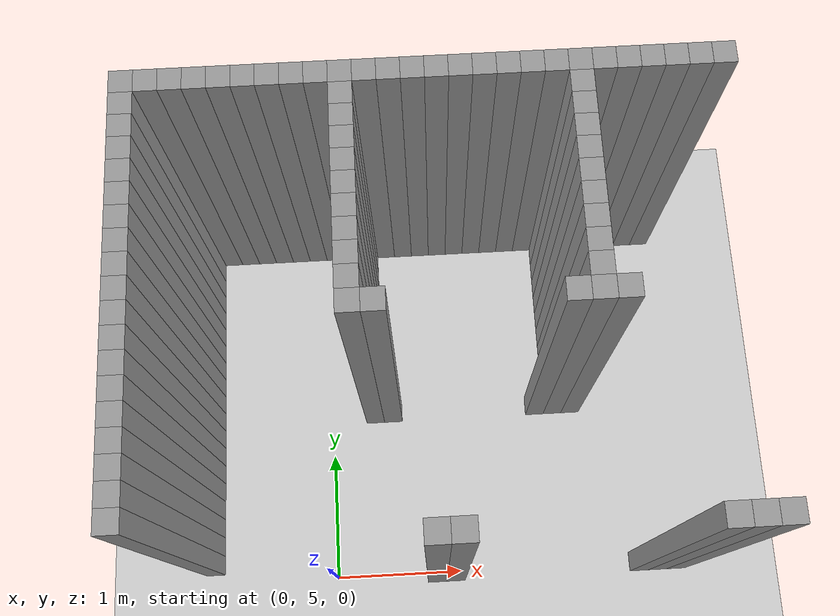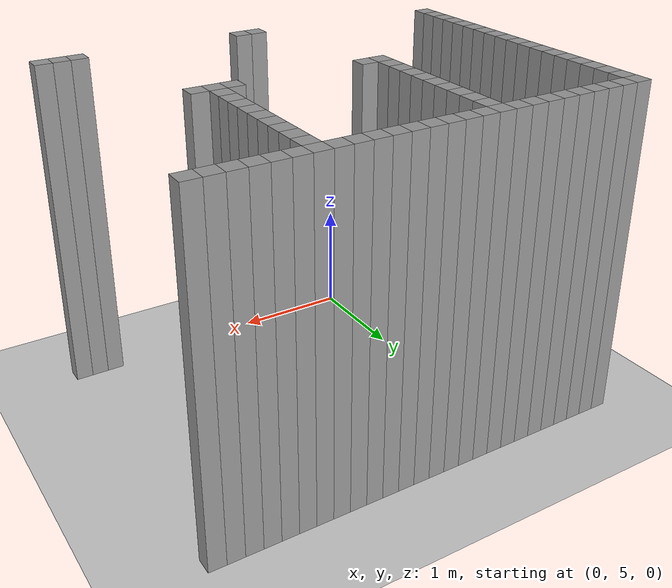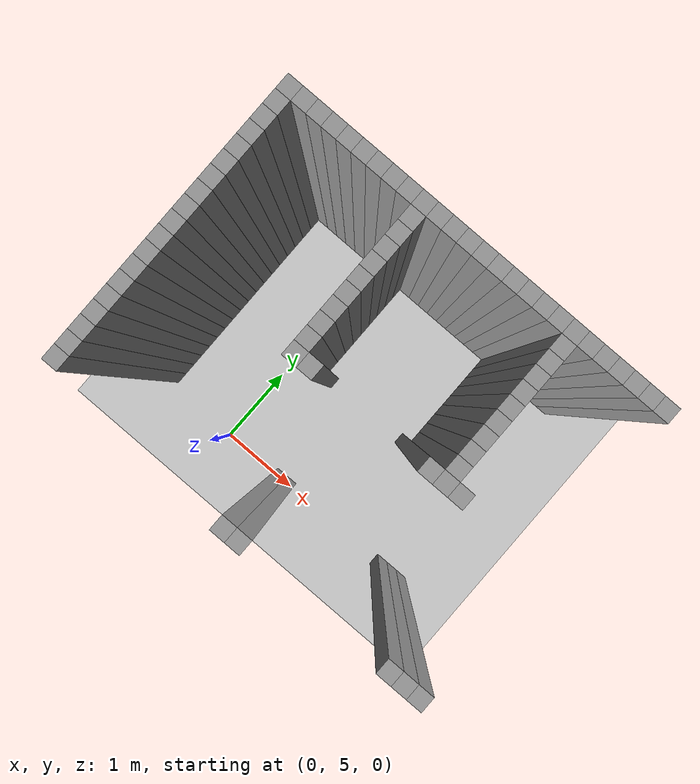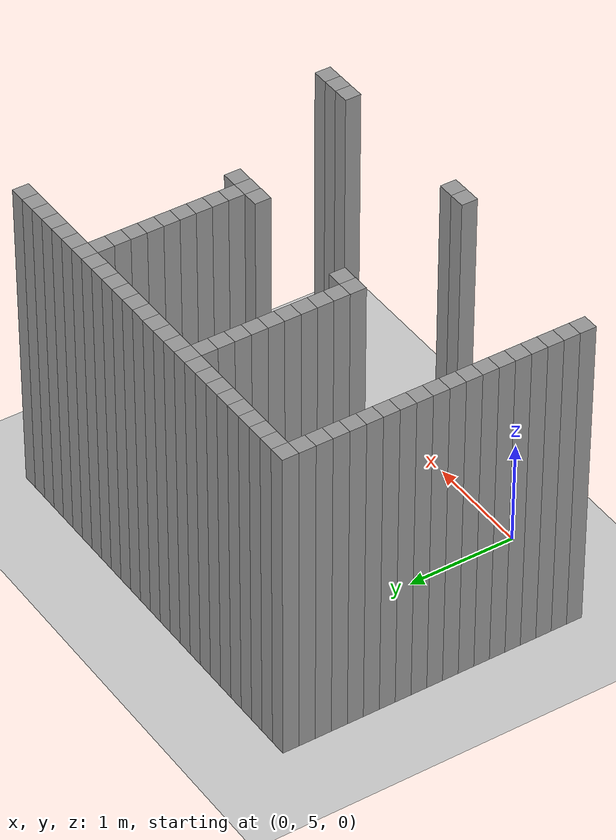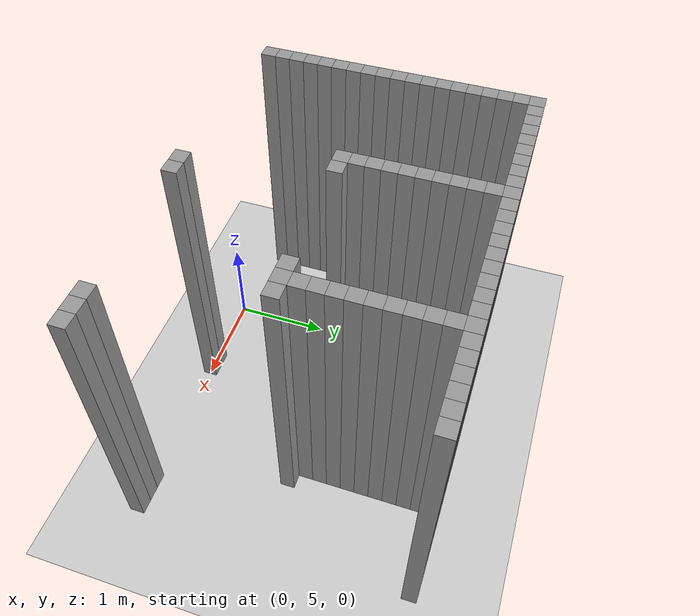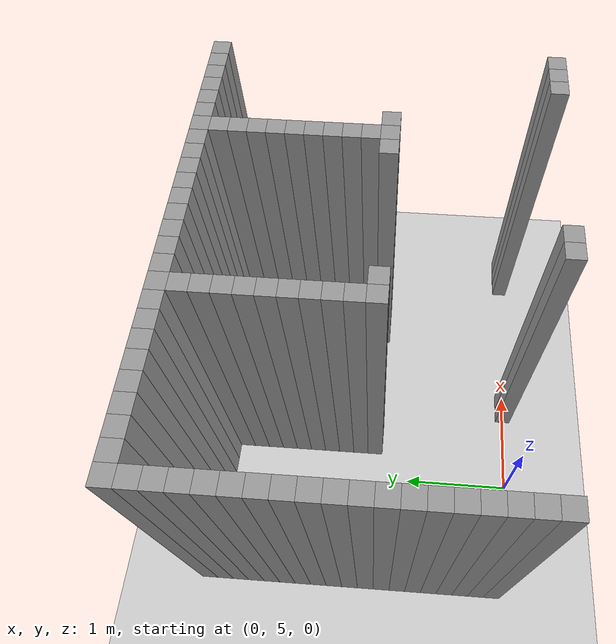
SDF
<sdf version="1.7">
 <world name="default">
  <model name="ground_plane">
   <static>1</static>
   <link name="link">
    <collision name="collision">
     <geometry><plane><normal>0 0 1</normal><size>100 100</size></plane></geometry>
     <surface>
      <contact><collide_bitmask>65535</collide_bitmask></contact>
      <friction><ode><mu>100</mu><mu2>50</mu2></ode></friction>
     </surface>
    </collision>
    <visual name="visual">
     <cast_shadows>0</cast_shadows>
     <geometry><plane><normal>0 0 1</normal><size>100 100</size></plane></geometry>
     <material>
      <script><uri>file://media/materials/scripts/gazebo.material</uri><name>Gazebo/Grey</name></script>
     </material>
    </visual>
   </link>
  </model>
  <model name="image45001">
   <pose>-1 -1 0 0 -0 0</pose>
   <link name="Wall_41">
    <collision name="Wall_41_Collision">
     <geometry><box><size>0.15 0.15 3</size></box></geometry>
     <pose>0 0 1.5 0 -0 0</pose>
    </collision>
    <visual name="Wall_41_Visual">
     <pose>0 0 1.5 0 -0 0</pose>
     <geometry><box><size>0.15 0.15 3</size></box></geometry>
     <material>
      <script><uri>file://media/materials/scripts/gazebo.material</uri><name>Gazebo/Grey</name></script>
      <ambient>1 1 1 1</ambient>
     </material>
     <meta><layer>0</layer></meta>
    </visual>
    <pose>0.0 6.1499999999999995 0 0 -0 0</pose>
   </link>
   <link name="Wall_42">
    <collision name="Wall_42_Collision">
     <geometry><box><size>0.15 0.15 3</size></box></geometry>
     <pose>0 0 1.5 0 -0 0</pose>
    </collision>
    <visual name="Wall_42_Visual">
     <pose>0 0 1.5 0 -0 0</pose>
     <geometry><box><size>0.15 0.15 3</size></box></geometry>
     <material>
      <script><uri>file://media/materials/scripts/gazebo.material</uri><name>Gazebo/Grey</name></script>
      <ambient>1 1 1 1</ambient>
     </material>
     <meta><layer>0</layer></meta>
    </visual>
    <pose>0.0 6.3 0 0 -0 0</pose>
   </link>
   <link name="Wall_43">
    <collision name="Wall_43_Collision">
     <geometry><box><size>0.15 0.15 3</size></box></geometry>
     <pose>0 0 1.5 0 -0 0</pose>
    </collision>
    <visual name="Wall_43_Visual">
     <pose>0 0 1.5 0 -0 0</pose>
     <geometry><box><size>0.15 0.15 3</size></box></geometry>
     <material>
      <script><uri>file://media/materials/scripts/gazebo.material</uri><name>Gazebo/Grey</name></script>
      <ambient>1 1 1 1</ambient>
     </material>
     <meta><layer>0</layer></meta>
    </visual>
    <pose>0.0 6.45 0 0 -0 0</pose>
   </link>
   <link name="Wall_44">
    <collision name="Wall_44_Collision">
     <geometry><box><size>0.15 0.15 3</size></box></geometry>
     <pose>0 0 1.5 0 -0 0</pose>
    </collision>
    <visual name="Wall_44_Visual">
     <pose>0 0 1.5 0 -0 0</pose>
     <geometry><box><size>0.15 0.15 3</size></box></geometry>
     <material>
      <script><uri>file://media/materials/scripts/gazebo.material</uri><name>Gazebo/Grey</name></script>
      <ambient>1 1 1 1</ambient>
     </material>
     <meta><layer>0</layer></meta>
    </visual>
    <pose>0.0 6.6 0 0 -0 0</pose>
   </link>
   <link name="Wall_45">
    <collision name="Wall_45_Collision">
     <geometry><box><size>0.15 0.15 3</size></box></geometry>
     <pose>0 0 1.5 0 -0 0</pose>
    </collision>
    <visual name="Wall_45_Visual">
     <pose>0 0 1.5 0 -0 0</pose>
     <geometry><box><size>0.15 0.15 3</size></box></geometry>
     <material>
      <script><uri>file://media/materials/scripts/gazebo.material</uri><name>Gazebo/Grey</name></script>
      <ambient>1 1 1 1</ambient>
     </material>
     <meta><layer>0</layer></meta>
    </visual>
    <pose>0.0 6.75 0 0 -0 0</pose>
   </link>
   <link name="Wall_46">
    <collision name="Wall_46_Collision">
     <geometry><box><size>0.15 0.15 3</size></box></geometry>
     <pose>0 0 1.5 0 -0 0</pose>
    </collision>
    <visual name="Wall_46_Visual">
     <pose>0 0 1.5 0 -0 0</pose>
     <geometry><box><size>0.15 0.15 3</size></box></geometry>
     <material>
      <script><uri>file://media/materials/scripts/gazebo.material</uri><name>Gazebo/Grey</name></script>
      <ambient>1 1 1 1</ambient>
     </material>
     <meta><layer>0</layer></meta>
    </visual>
    <pose>0.0 6.8999999999999995 0 0 -0 0</pose>
   </link>
   <link name="Wall_47">
    <collision name="Wall_47_Collision">
     <geometry><box><size>0.15 0.15 3</size></box></geometry>
     <pose>0 0 1.5 0 -0 0</pose>
    </collision>
    <visual name="Wall_47_Visual">
     <pose>0 0 1.5 0 -0 0</pose>
     <geometry><box><size>0.15 0.15 3</size></box></geometry>
     <material>
      <script><uri>file://media/materials/scripts/gazebo.material</uri><name>Gazebo/Grey</name></script>
      <ambient>1 1 1 1</ambient>
     </material>
     <meta><layer>0</layer></meta>
    </visual>
    <pose>0.0 7.05 0 0 -0 0</pose>
   </link>
   <link name="Wall_48">
    <collision name="Wall_48_Collision">
     <geometry><box><size>0.15 0.15 3</size></box></geometry>
     <pose>0 0 1.5 0 -0 0</pose>
    </collision>
    <visual name="Wall_48_Visual">
     <pose>0 0 1.5 0 -0 0</pose>
     <geometry><box><size>0.15 0.15 3</size></box></geometry>
     <material>
      <script><uri>file://media/materials/scripts/gazebo.material</uri><name>Gazebo/Grey</name></script>
      <ambient>1 1 1 1</ambient>
     </material>
     <meta><layer>0</layer></meta>
    </visual>
    <pose>0.0 7.199999999999999 0 0 -0 0</pose>
   </link>
   <link name="Wall_49">
    <collision name="Wall_49_Collision">
     <geometry><box><size>0.15 0.15 3</size></box></geometry>
     <pose>0 0 1.5 0 -0 0</pose>
    </collision>
    <visual name="Wall_49_Visual">
     <pose>0 0 1.5 0 -0 0</pose>
     <geometry><box><size>0.15 0.15 3</size></box></geometry>
     <material>
      <script><uri>file://media/materials/scripts/gazebo.material</uri><name>Gazebo/Grey</name></script>
      <ambient>1 1 1 1</ambient>
     </material>
     <meta><layer>0</layer></meta>
    </visual>
    <pose>0.0 7.35 0 0 -0 0</pose>
   </link>
   <link name="Wall_50">
    <collision name="Wall_50_Collision">
     <geometry><box><size>0.15 0.15 3</size></box></geometry>
     <pose>0 0 1.5 0 -0 0</pose>
    </collision>
    <visual name="Wall_50_Visual">
     <pose>0 0 1.5 0 -0 0</pose>
     <geometry><box><size>0.15 0.15 3</size></box></geometry>
     <material>
      <script><uri>file://media/materials/scripts/gazebo.material</uri><name>Gazebo/Grey</name></script>
      <ambient>1 1 1 1</ambient>
     </material>
     <meta><layer>0</layer></meta>
    </visual>
    <pose>0.0 7.5 0 0 -0 0</pose>
   </link>
   <link name="Wall_51">
    <collision name="Wall_51_Collision">
     <geometry><box><size>0.15 0.15 3</size></box></geometry>
     <pose>0 0 1.5 0 -0 0</pose>
    </collision>
    <visual name="Wall_51_Visual">
     <pose>0 0 1.5 0 -0 0</pose>
     <geometry><box><size>0.15 0.15 3</size></box></geometry>
     <material>
      <script><uri>file://media/materials/scripts/gazebo.material</uri><name>Gazebo/Grey</name></script>
      <ambient>1 1 1 1</ambient>
     </material>
     <meta><layer>0</layer></meta>
    </visual>
    <pose>0.0 7.6499999999999995 0 0 -0 0</pose>
   </link>
   <link name="Wall_52">
    <collision name="Wall_52_Collision">
     <geometry><box><size>0.15 0.15 3</size></box></geometry>
     <pose>0 0 1.5 0 -0 0</pose>
    </collision>
    <visual name="Wall_52_Visual">
     <pose>0 0 1.5 0 -0 0</pose>
     <geometry><box><size>0.15 0.15 3</size></box></geometry>
     <material>
      <script><uri>file://media/materials/scripts/gazebo.material</uri><name>Gazebo/Grey</name></script>
      <ambient>1 1 1 1</ambient>
     </material>
     <meta><layer>0</layer></meta>
    </visual>
    <pose>0.0 7.8 0 0 -0 0</pose>
   </link>
   <link name="Wall_53">
    <collision name="Wall_53_Collision">
     <geometry><box><size>0.15 0.15 3</size></box></geometry>
     <pose>0 0 1.5 0 -0 0</pose>
    </collision>
    <visual name="Wall_53_Visual">
     <pose>0 0 1.5 0 -0 0</pose>
     <geometry><box><size>0.15 0.15 3</size></box></geometry>
     <material>
      <script><uri>file://media/materials/scripts/gazebo.material</uri><name>Gazebo/Grey</name></script>
      <ambient>1 1 1 1</ambient>
     </material>
     <meta><layer>0</layer></meta>
    </visual>
    <pose>0.0 7.949999999999999 0 0 -0 0</pose>
   </link>
   <link name="Wall_54">
    <collision name="Wall_54_Collision">
     <geometry><box><size>0.15 0.15 3</size></box></geometry>
     <pose>0 0 1.5 0 -0 0</pose>
    </collision>
    <visual name="Wall_54_Visual">
     <pose>0 0 1.5 0 -0 0</pose>
     <geometry><box><size>0.15 0.15 3</size></box></geometry>
     <material>
      <script><uri>file://media/materials/scripts/gazebo.material</uri><name>Gazebo/Grey</name></script>
      <ambient>1 1 1 1</ambient>
     </material>
     <meta><layer>0</layer></meta>
    </visual>
    <pose>0.0 8.1 0 0 -0 0</pose>
   </link>
   <link name="Wall_55">
    <collision name="Wall_55_Collision">
     <geometry><box><size>0.15 0.15 3</size></box></geometry>
     <pose>0 0 1.5 0 -0 0</pose>
    </collision>
    <visual name="Wall_55_Visual">
     <pose>0 0 1.5 0 -0 0</pose>
     <geometry><box><size>0.15 0.15 3</size></box></geometry>
     <material>
      <script><uri>file://media/materials/scripts/gazebo.material</uri><name>Gazebo/Grey</name></script>
      <ambient>1 1 1 1</ambient>
     </material>
     <meta><layer>0</layer></meta>
    </visual>
    <pose>0.0 8.25 0 0 -0 0</pose>
   </link>
   <link name="Wall_56">
    <collision name="Wall_56_Collision">
     <geometry><box><size>0.15 0.15 3</size></box></geometry>
     <pose>0 0 1.5 0 -0 0</pose>
    </collision>
    <visual name="Wall_56_Visual">
     <pose>0 0 1.5 0 -0 0</pose>
     <geometry><box><size>0.15 0.15 3</size></box></geometry>
     <material>
      <script><uri>file://media/materials/scripts/gazebo.material</uri><name>Gazebo/Grey</name></script>
      <ambient>1 1 1 1</ambient>
     </material>
     <meta><layer>0</layer></meta>
    </visual>
    <pose>0.0 8.4 0 0 -0 0</pose>
   </link>
   <link name="Wall_57">
    <collision name="Wall_57_Collision">
     <geometry><box><size>0.15 0.15 3</size></box></geometry>
     <pose>0 0 1.5 0 -0 0</pose>
    </collision>
    <visual name="Wall_57_Visual">
     <pose>0 0 1.5 0 -0 0</pose>
     <geometry><box><size>0.15 0.15 3</size></box></geometry>
     <material>
      <script><uri>file://media/materials/scripts/gazebo.material</uri><name>Gazebo/Grey</name></script>
      <ambient>1 1 1 1</ambient>
     </material>
     <meta><layer>0</layer></meta>
    </visual>
    <pose>0.0 8.549999999999999 0 0 -0 0</pose>
   </link>
   <link name="Wall_58">
    <collision name="Wall_58_Collision">
     <geometry><box><size>0.15 0.15 3</size></box></geometry>
     <pose>0 0 1.5 0 -0 0</pose>
    </collision>
    <visual name="Wall_58_Visual">
     <pose>0 0 1.5 0 -0 0</pose>
     <geometry><box><size>0.15 0.15 3</size></box></geometry>
     <material>
      <script><uri>file://media/materials/scripts/gazebo.material</uri><name>Gazebo/Grey</name></script>
      <ambient>1 1 1 1</ambient>
     </material>
     <meta><layer>0</layer></meta>
    </visual>
    <pose>0.0 8.7 0 0 -0 0</pose>
   </link>
   <link name="Wall_59">
    <collision name="Wall_59_Collision">
     <geometry><box><size>0.15 0.15 3</size></box></geometry>
     <pose>0 0 1.5 0 -0 0</pose>
    </collision>
    <visual name="Wall_59_Visual">
     <pose>0 0 1.5 0 -0 0</pose>
     <geometry><box><size>0.15 0.15 3</size></box></geometry>
     <material>
      <script><uri>file://media/materials/scripts/gazebo.material</uri><name>Gazebo/Grey</name></script>
      <ambient>1 1 1 1</ambient>
     </material>
     <meta><layer>0</layer></meta>
    </visual>
    <pose>0.0 8.85 0 0 -0 0</pose>
   </link>
   <link name="Wall_64">
    <collision name="Wall_64_Collision">
     <geometry><box><size>0.15 0.15 3</size></box></geometry>
     <pose>0 0 1.5 0 -0 0</pose>
    </collision>
    <visual name="Wall_64_Visual">
     <pose>0 0 1.5 0 -0 0</pose>
     <geometry><box><size>0.15 0.15 3</size></box></geometry>
     <material>
      <script><uri>file://media/materials/scripts/gazebo.material</uri><name>Gazebo/Grey</name></script>
      <ambient>1 1 1 1</ambient>
     </material>
     <meta><layer>0</layer></meta>
    </visual>
    <pose>0.15 8.85 0 0 -0 0</pose>
   </link>
   <link name="Wall_69">
    <collision name="Wall_69_Collision">
     <geometry><box><size>0.15 0.15 3</size></box></geometry>
     <pose>0 0 1.5 0 -0 0</pose>
    </collision>
    <visual name="Wall_69_Visual">
     <pose>0 0 1.5 0 -0 0</pose>
     <geometry><box><size>0.15 0.15 3</size></box></geometry>
     <material>
      <script><uri>file://media/materials/scripts/gazebo.material</uri><name>Gazebo/Grey</name></script>
      <ambient>1 1 1 1</ambient>
     </material>
     <meta><layer>0</layer></meta>
    </visual>
    <pose>0.3 8.85 0 0 -0 0</pose>
   </link>
   <link name="Wall_74">
    <collision name="Wall_74_Collision">
     <geometry><box><size>0.15 0.15 3</size></box></geometry>
     <pose>0 0 1.5 0 -0 0</pose>
    </collision>
    <visual name="Wall_74_Visual">
     <pose>0 0 1.5 0 -0 0</pose>
     <geometry><box><size>0.15 0.15 3</size></box></geometry>
     <material>
      <script><uri>file://media/materials/scripts/gazebo.material</uri><name>Gazebo/Grey</name></script>
      <ambient>1 1 1 1</ambient>
     </material>
     <meta><layer>0</layer></meta>
    </visual>
    <pose>0.44999999999999996 8.85 0 0 -0 0</pose>
   </link>
   <link name="Wall_78">
    <collision name="Wall_78_Collision">
     <geometry><box><size>0.15 0.15 3</size></box></geometry>
     <pose>0 0 1.5 0 -0 0</pose>
    </collision>
    <visual name="Wall_78_Visual">
     <pose>0 0 1.5 0 -0 0</pose>
     <geometry><box><size>0.15 0.15 3</size></box></geometry>
     <material>
      <script><uri>file://media/materials/scripts/gazebo.material</uri><name>Gazebo/Grey</name></script>
      <ambient>1 1 1 1</ambient>
     </material>
     <meta><layer>0</layer></meta>
    </visual>
    <pose>0.6 8.85 0 0 -0 0</pose>
   </link>
   <link name="Wall_82">
    <collision name="Wall_82_Collision">
     <geometry><box><size>0.15 0.15 3</size></box></geometry>
     <pose>0 0 1.5 0 -0 0</pose>
    </collision>
    <visual name="Wall_82_Visual">
     <pose>0 0 1.5 0 -0 0</pose>
     <geometry><box><size>0.15 0.15 3</size></box></geometry>
     <material>
      <script><uri>file://media/materials/scripts/gazebo.material</uri><name>Gazebo/Grey</name></script>
      <ambient>1 1 1 1</ambient>
     </material>
     <meta><layer>0</layer></meta>
    </visual>
    <pose>0.75 8.85 0 0 -0 0</pose>
   </link>
   <link name="Wall_86">
    <collision name="Wall_86_Collision">
     <geometry><box><size>0.15 0.15 3</size></box></geometry>
     <pose>0 0 1.5 0 -0 0</pose>
    </collision>
    <visual name="Wall_86_Visual">
     <pose>0 0 1.5 0 -0 0</pose>
     <geometry><box><size>0.15 0.15 3</size></box></geometry>
     <material>
      <script><uri>file://media/materials/scripts/gazebo.material</uri><name>Gazebo/Grey</name></script>
      <ambient>1 1 1 1</ambient>
     </material>
     <meta><layer>0</layer></meta>
    </visual>
    <pose>0.8999999999999999 8.85 0 0 -0 0</pose>
   </link>
   <link name="Wall_90">
    <collision name="Wall_90_Collision">
     <geometry><box><size>0.15 0.15 3</size></box></geometry>
     <pose>0 0 1.5 0 -0 0</pose>
    </collision>
    <visual name="Wall_90_Visual">
     <pose>0 0 1.5 0 -0 0</pose>
     <geometry><box><size>0.15 0.15 3</size></box></geometry>
     <material>
      <script><uri>file://media/materials/scripts/gazebo.material</uri><name>Gazebo/Grey</name></script>
      <ambient>1 1 1 1</ambient>
     </material>
     <meta><layer>0</layer></meta>
    </visual>
    <pose>1.05 8.85 0 0 -0 0</pose>
   </link>
   <link name="Wall_94">
    <collision name="Wall_94_Collision">
     <geometry><box><size>0.15 0.15 3</size></box></geometry>
     <pose>0 0 1.5 0 -0 0</pose>
    </collision>
    <visual name="Wall_94_Visual">
     <pose>0 0 1.5 0 -0 0</pose>
     <geometry><box><size>0.15 0.15 3</size></box></geometry>
     <material>
      <script><uri>file://media/materials/scripts/gazebo.material</uri><name>Gazebo/Grey</name></script>
      <ambient>1 1 1 1</ambient>
     </material>
     <meta><layer>0</layer></meta>
    </visual>
    <pose>1.2 8.85 0 0 -0 0</pose>
   </link>
   <link name="Wall_98">
    <collision name="Wall_98_Collision">
     <geometry><box><size>0.15 0.15 3</size></box></geometry>
     <pose>0 0 1.5 0 -0 0</pose>
    </collision>
    <visual name="Wall_98_Visual">
     <pose>0 0 1.5 0 -0 0</pose>
     <geometry><box><size>0.15 0.15 3</size></box></geometry>
     <material>
      <script><uri>file://media/materials/scripts/gazebo.material</uri><name>Gazebo/Grey</name></script>
      <ambient>1 1 1 1</ambient>
     </material>
     <meta><layer>0</layer></meta>
    </visual>
    <pose>1.3499999999999999 7.35 0 0 -0 0</pose>
   </link>
   <link name="Wall_99">
    <collision name="Wall_99_Collision">
     <geometry><box><size>0.15 0.15 3</size></box></geometry>
     <pose>0 0 1.5 0 -0 0</pose>
    </collision>
    <visual name="Wall_99_Visual">
     <pose>0 0 1.5 0 -0 0</pose>
     <geometry><box><size>0.15 0.15 3</size></box></geometry>
     <material>
      <script><uri>file://media/materials/scripts/gazebo.material</uri><name>Gazebo/Grey</name></script>
      <ambient>1 1 1 1</ambient>
     </material>
     <meta><layer>0</layer></meta>
    </visual>
    <pose>1.3499999999999999 7.5 0 0 -0 0</pose>
   </link>
   <link name="Wall_100">
    <collision name="Wall_100_Collision">
     <geometry><box><size>0.15 0.15 3</size></box></geometry>
     <pose>0 0 1.5 0 -0 0</pose>
    </collision>
    <visual name="Wall_100_Visual">
     <pose>0 0 1.5 0 -0 0</pose>
     <geometry><box><size>0.15 0.15 3</size></box></geometry>
     <material>
      <script><uri>file://media/materials/scripts/gazebo.material</uri><name>Gazebo/Grey</name></script>
      <ambient>1 1 1 1</ambient>
     </material>
     <meta><layer>0</layer></meta>
    </visual>
    <pose>1.3499999999999999 7.6499999999999995 0 0 -0 0</pose>
   </link>
   <link name="Wall_101">
    <collision name="Wall_101_Collision">
     <geometry><box><size>0.15 0.15 3</size></box></geometry>
     <pose>0 0 1.5 0 -0 0</pose>
    </collision>
    <visual name="Wall_101_Visual">
     <pose>0 0 1.5 0 -0 0</pose>
     <geometry><box><size>0.15 0.15 3</size></box></geometry>
     <material>
      <script><uri>file://media/materials/scripts/gazebo.material</uri><name>Gazebo/Grey</name></script>
      <ambient>1 1 1 1</ambient>
     </material>
     <meta><layer>0</layer></meta>
    </visual>
    <pose>1.3499999999999999 7.8 0 0 -0 0</pose>
   </link>
   <link name="Wall_102">
    <collision name="Wall_102_Collision">
     <geometry><box><size>0.15 0.15 3</size></box></geometry>
     <pose>0 0 1.5 0 -0 0</pose>
    </collision>
    <visual name="Wall_102_Visual">
     <pose>0 0 1.5 0 -0 0</pose>
     <geometry><box><size>0.15 0.15 3</size></box></geometry>
     <material>
      <script><uri>file://media/materials/scripts/gazebo.material</uri><name>Gazebo/Grey</name></script>
      <ambient>1 1 1 1</ambient>
     </material>
     <meta><layer>0</layer></meta>
    </visual>
    <pose>1.3499999999999999 7.949999999999999 0 0 -0 0</pose>
   </link>
   <link name="Wall_103">
    <collision name="Wall_103_Collision">
     <geometry><box><size>0.15 0.15 3</size></box></geometry>
     <pose>0 0 1.5 0 -0 0</pose>
    </collision>
    <visual name="Wall_103_Visual">
     <pose>0 0 1.5 0 -0 0</pose>
     <geometry><box><size>0.15 0.15 3</size></box></geometry>
     <material>
      <script><uri>file://media/materials/scripts/gazebo.material</uri><name>Gazebo/Grey</name></script>
      <ambient>1 1 1 1</ambient>
     </material>
     <meta><layer>0</layer></meta>
    </visual>
    <pose>1.3499999999999999 8.1 0 0 -0 0</pose>
   </link>
   <link name="Wall_104">
    <collision name="Wall_104_Collision">
     <geometry><box><size>0.15 0.15 3</size></box></geometry>
     <pose>0 0 1.5 0 -0 0</pose>
    </collision>
    <visual name="Wall_104_Visual">
     <pose>0 0 1.5 0 -0 0</pose>
     <geometry><box><size>0.15 0.15 3</size></box></geometry>
     <material>
      <script><uri>file://media/materials/scripts/gazebo.material</uri><name>Gazebo/Grey</name></script>
      <ambient>1 1 1 1</ambient>
     </material>
     <meta><layer>0</layer></meta>
    </visual>
    <pose>1.3499999999999999 8.25 0 0 -0 0</pose>
   </link>
   <link name="Wall_105">
    <collision name="Wall_105_Collision">
     <geometry><box><size>0.15 0.15 3</size></box></geometry>
     <pose>0 0 1.5 0 -0 0</pose>
    </collision>
    <visual name="Wall_105_Visual">
     <pose>0 0 1.5 0 -0 0</pose>
     <geometry><box><size>0.15 0.15 3</size></box></geometry>
     <material>
      <script><uri>file://media/materials/scripts/gazebo.material</uri><name>Gazebo/Grey</name></script>
      <ambient>1 1 1 1</ambient>
     </material>
     <meta><layer>0</layer></meta>
    </visual>
    <pose>1.3499999999999999 8.4 0 0 -0 0</pose>
   </link>
   <link name="Wall_106">
    <collision name="Wall_106_Collision">
     <geometry><box><size>0.15 0.15 3</size></box></geometry>
     <pose>0 0 1.5 0 -0 0</pose>
    </collision>
    <visual name="Wall_106_Visual">
     <pose>0 0 1.5 0 -0 0</pose>
     <geometry><box><size>0.15 0.15 3</size></box></geometry>
     <material>
      <script><uri>file://media/materials/scripts/gazebo.material</uri><name>Gazebo/Grey</name></script>
      <ambient>1 1 1 1</ambient>
     </material>
     <meta><layer>0</layer></meta>
    </visual>
    <pose>1.3499999999999999 8.549999999999999 0 0 -0 0</pose>
   </link>
   <link name="Wall_107">
    <collision name="Wall_107_Collision">
     <geometry><box><size>0.15 0.15 3</size></box></geometry>
     <pose>0 0 1.5 0 -0 0</pose>
    </collision>
    <visual name="Wall_107_Visual">
     <pose>0 0 1.5 0 -0 0</pose>
     <geometry><box><size>0.15 0.15 3</size></box></geometry>
     <material>
      <script><uri>file://media/materials/scripts/gazebo.material</uri><name>Gazebo/Grey</name></script>
      <ambient>1 1 1 1</ambient>
     </material>
     <meta><layer>0</layer></meta>
    </visual>
    <pose>1.3499999999999999 8.7 0 0 -0 0</pose>
   </link>
   <link name="Wall_108">
    <collision name="Wall_108_Collision">
     <geometry><box><size>0.15 0.15 3</size></box></geometry>
     <pose>0 0 1.5 0 -0 0</pose>
    </collision>
    <visual name="Wall_108_Visual">
     <pose>0 0 1.5 0 -0 0</pose>
     <geometry><box><size>0.15 0.15 3</size></box></geometry>
     <material>
      <script><uri>file://media/materials/scripts/gazebo.material</uri><name>Gazebo/Grey</name></script>
      <ambient>1 1 1 1</ambient>
     </material>
     <meta><layer>0</layer></meta>
    </visual>
    <pose>1.3499999999999999 8.85 0 0 -0 0</pose>
   </link>
   <link name="Wall_113">
    <collision name="Wall_113_Collision">
     <geometry><box><size>0.15 0.15 3</size></box></geometry>
     <pose>0 0 1.5 0 -0 0</pose>
    </collision>
    <visual name="Wall_113_Visual">
     <pose>0 0 1.5 0 -0 0</pose>
     <geometry><box><size>0.15 0.15 3</size></box></geometry>
     <material>
      <script><uri>file://media/materials/scripts/gazebo.material</uri><name>Gazebo/Grey</name></script>
      <ambient>1 1 1 1</ambient>
     </material>
     <meta><layer>0</layer></meta>
    </visual>
    <pose>1.5 7.35 0 0 -0 0</pose>
   </link>
   <link name="Wall_114">
    <collision name="Wall_114_Collision">
     <geometry><box><size>0.15 0.15 3</size></box></geometry>
     <pose>0 0 1.5 0 -0 0</pose>
    </collision>
    <visual name="Wall_114_Visual">
     <pose>0 0 1.5 0 -0 0</pose>
     <geometry><box><size>0.15 0.15 3</size></box></geometry>
     <material>
      <script><uri>file://media/materials/scripts/gazebo.material</uri><name>Gazebo/Grey</name></script>
      <ambient>1 1 1 1</ambient>
     </material>
     <meta><layer>0</layer></meta>
    </visual>
    <pose>1.5 8.85 0 0 -0 0</pose>
   </link>
   <link name="Wall_119">
    <collision name="Wall_119_Collision">
     <geometry><box><size>0.15 0.15 3</size></box></geometry>
     <pose>0 0 1.5 0 -0 0</pose>
    </collision>
    <visual name="Wall_119_Visual">
     <pose>0 0 1.5 0 -0 0</pose>
     <geometry><box><size>0.15 0.15 3</size></box></geometry>
     <material>
      <script><uri>file://media/materials/scripts/gazebo.material</uri><name>Gazebo/Grey</name></script>
      <ambient>1 1 1 1</ambient>
     </material>
     <meta><layer>0</layer></meta>
    </visual>
    <pose>1.65 8.85 0 0 -0 0</pose>
   </link>
   <link name="Wall_123">
    <collision name="Wall_123_Collision">
     <geometry><box><size>0.15 0.15 3</size></box></geometry>
     <pose>0 0 1.5 0 -0 0</pose>
    </collision>
    <visual name="Wall_123_Visual">
     <pose>0 0 1.5 0 -0 0</pose>
     <geometry><box><size>0.15 0.15 3</size></box></geometry>
     <material>
      <script><uri>file://media/materials/scripts/gazebo.material</uri><name>Gazebo/Grey</name></script>
      <ambient>1 1 1 1</ambient>
     </material>
     <meta><layer>0</layer></meta>
    </visual>
    <pose>1.7999999999999998 6.0 0 0 -0 0</pose>
   </link>
   <link name="Wall_124">
    <collision name="Wall_124_Collision">
     <geometry><box><size>0.15 0.15 3</size></box></geometry>
     <pose>0 0 1.5 0 -0 0</pose>
    </collision>
    <visual name="Wall_124_Visual">
     <pose>0 0 1.5 0 -0 0</pose>
     <geometry><box><size>0.15 0.15 3</size></box></geometry>
     <material>
      <script><uri>file://media/materials/scripts/gazebo.material</uri><name>Gazebo/Grey</name></script>
      <ambient>1 1 1 1</ambient>
     </material>
     <meta><layer>0</layer></meta>
    </visual>
    <pose>1.7999999999999998 8.85 0 0 -0 0</pose>
   </link>
   <link name="Wall_137">
    <collision name="Wall_137_Collision">
     <geometry><box><size>0.15 0.15 3</size></box></geometry>
     <pose>0 0 1.5 0 -0 0</pose>
    </collision>
    <visual name="Wall_137_Visual">
     <pose>0 0 1.5 0 -0 0</pose>
     <geometry><box><size>0.15 0.15 3</size></box></geometry>
     <material>
      <script><uri>file://media/materials/scripts/gazebo.material</uri><name>Gazebo/Grey</name></script>
      <ambient>1 1 1 1</ambient>
     </material>
     <meta><layer>0</layer></meta>
    </visual>
    <pose>1.95 6.0 0 0 -0 0</pose>
   </link>
   <link name="Wall_138">
    <collision name="Wall_138_Collision">
     <geometry><box><size>0.15 0.15 3</size></box></geometry>
     <pose>0 0 1.5 0 -0 0</pose>
    </collision>
    <visual name="Wall_138_Visual">
     <pose>0 0 1.5 0 -0 0</pose>
     <geometry><box><size>0.15 0.15 3</size></box></geometry>
     <material>
      <script><uri>file://media/materials/scripts/gazebo.material</uri><name>Gazebo/Grey</name></script>
      <ambient>1 1 1 1</ambient>
     </material>
     <meta><layer>0</layer></meta>
    </visual>
    <pose>1.95 8.85 0 0 -0 0</pose>
   </link>
   <link name="Wall_141">
    <collision name="Wall_141_Collision">
     <geometry><box><size>0.15 0.15 3</size></box></geometry>
     <pose>0 0 1.5 0 -0 0</pose>
    </collision>
    <visual name="Wall_141_Visual">
     <pose>0 0 1.5 0 -0 0</pose>
     <geometry><box><size>0.15 0.15 3</size></box></geometry>
     <material>
      <script><uri>file://media/materials/scripts/gazebo.material</uri><name>Gazebo/Grey</name></script>
      <ambient>1 1 1 1</ambient>
     </material>
     <meta><layer>0</layer></meta>
    </visual>
    <pose>2.1 8.85 0 0 -0 0</pose>
   </link>
   <link name="Wall_157">
    <collision name="Wall_157_Collision">
     <geometry><box><size>0.15 0.15 3</size></box></geometry>
     <pose>0 0 1.5 0 -0 0</pose>
    </collision>
    <visual name="Wall_157_Visual">
     <pose>0 0 1.5 0 -0 0</pose>
     <geometry><box><size>0.15 0.15 3</size></box></geometry>
     <material>
      <script><uri>file://media/materials/scripts/gazebo.material</uri><name>Gazebo/Grey</name></script>
      <ambient>1 1 1 1</ambient>
     </material>
     <meta><layer>0</layer></meta>
    </visual>
    <pose>2.25 8.85 0 0 -0 0</pose>
   </link>
   <link name="Wall_159">
    <collision name="Wall_159_Collision">
     <geometry><box><size>0.15 0.15 3</size></box></geometry>
     <pose>0 0 1.5 0 -0 0</pose>
    </collision>
    <visual name="Wall_159_Visual">
     <pose>0 0 1.5 0 -0 0</pose>
     <geometry><box><size>0.15 0.15 3</size></box></geometry>
     <material>
      <script><uri>file://media/materials/scripts/gazebo.material</uri><name>Gazebo/Grey</name></script>
      <ambient>1 1 1 1</ambient>
     </material>
     <meta><layer>0</layer></meta>
    </visual>
    <pose>2.4 8.85 0 0 -0 0</pose>
   </link>
   <link name="Wall_161">
    <collision name="Wall_161_Collision">
     <geometry><box><size>0.15 0.15 3</size></box></geometry>
     <pose>0 0 1.5 0 -0 0</pose>
    </collision>
    <visual name="Wall_161_Visual">
     <pose>0 0 1.5 0 -0 0</pose>
     <geometry><box><size>0.15 0.15 3</size></box></geometry>
     <material>
      <script><uri>file://media/materials/scripts/gazebo.material</uri><name>Gazebo/Grey</name></script>
      <ambient>1 1 1 1</ambient>
     </material>
     <meta><layer>0</layer></meta>
    </visual>
    <pose>2.55 8.85 0 0 -0 0</pose>
   </link>
   <link name="Wall_163">
    <collision name="Wall_163_Collision">
     <geometry><box><size>0.15 0.15 3</size></box></geometry>
     <pose>0 0 1.5 0 -0 0</pose>
    </collision>
    <visual name="Wall_163_Visual">
     <pose>0 0 1.5 0 -0 0</pose>
     <geometry><box><size>0.15 0.15 3</size></box></geometry>
     <material>
      <script><uri>file://media/materials/scripts/gazebo.material</uri><name>Gazebo/Grey</name></script>
      <ambient>1 1 1 1</ambient>
     </material>
     <meta><layer>0</layer></meta>
    </visual>
    <pose>2.6999999999999997 7.35 0 0 -0 0</pose>
   </link>
   <link name="Wall_164">
    <collision name="Wall_164_Collision">
     <geometry><box><size>0.15 0.15 3</size></box></geometry>
     <pose>0 0 1.5 0 -0 0</pose>
    </collision>
    <visual name="Wall_164_Visual">
     <pose>0 0 1.5 0 -0 0</pose>
     <geometry><box><size>0.15 0.15 3</size></box></geometry>
     <material>
      <script><uri>file://media/materials/scripts/gazebo.material</uri><name>Gazebo/Grey</name></script>
      <ambient>1 1 1 1</ambient>
     </material>
     <meta><layer>0</layer></meta>
    </visual>
    <pose>2.6999999999999997 8.85 0 0 -0 0</pose>
   </link>
   <link name="Wall_166">
    <collision name="Wall_166_Collision">
     <geometry><box><size>0.15 0.15 3</size></box></geometry>
     <pose>0 0 1.5 0 -0 0</pose>
    </collision>
    <visual name="Wall_166_Visual">
     <pose>0 0 1.5 0 -0 0</pose>
     <geometry><box><size>0.15 0.15 3</size></box></geometry>
     <material>
      <script><uri>file://media/materials/scripts/gazebo.material</uri><name>Gazebo/Grey</name></script>
      <ambient>1 1 1 1</ambient>
     </material>
     <meta><layer>0</layer></meta>
    </visual>
    <pose>2.85 7.35 0 0 -0 0</pose>
   </link>
   <link name="Wall_167">
    <collision name="Wall_167_Collision">
     <geometry><box><size>0.15 0.15 3</size></box></geometry>
     <pose>0 0 1.5 0 -0 0</pose>
    </collision>
    <visual name="Wall_167_Visual">
     <pose>0 0 1.5 0 -0 0</pose>
     <geometry><box><size>0.15 0.15 3</size></box></geometry>
     <material>
      <script><uri>file://media/materials/scripts/gazebo.material</uri><name>Gazebo/Grey</name></script>
      <ambient>1 1 1 1</ambient>
     </material>
     <meta><layer>0</layer></meta>
    </visual>
    <pose>2.85 7.5 0 0 -0 0</pose>
   </link>
   <link name="Wall_168">
    <collision name="Wall_168_Collision">
     <geometry><box><size>0.15 0.15 3</size></box></geometry>
     <pose>0 0 1.5 0 -0 0</pose>
    </collision>
    <visual name="Wall_168_Visual">
     <pose>0 0 1.5 0 -0 0</pose>
     <geometry><box><size>0.15 0.15 3</size></box></geometry>
     <material>
      <script><uri>file://media/materials/scripts/gazebo.material</uri><name>Gazebo/Grey</name></script>
      <ambient>1 1 1 1</ambient>
     </material>
     <meta><layer>0</layer></meta>
    </visual>
    <pose>2.85 7.6499999999999995 0 0 -0 0</pose>
   </link>
   <link name="Wall_169">
    <collision name="Wall_169_Collision">
     <geometry><box><size>0.15 0.15 3</size></box></geometry>
     <pose>0 0 1.5 0 -0 0</pose>
    </collision>
    <visual name="Wall_169_Visual">
     <pose>0 0 1.5 0 -0 0</pose>
     <geometry><box><size>0.15 0.15 3</size></box></geometry>
     <material>
      <script><uri>file://media/materials/scripts/gazebo.material</uri><name>Gazebo/Grey</name></script>
      <ambient>1 1 1 1</ambient>
     </material>
     <meta><layer>0</layer></meta>
    </visual>
    <pose>2.85 7.8 0 0 -0 0</pose>
   </link>
   <link name="Wall_170">
    <collision name="Wall_170_Collision">
     <geometry><box><size>0.15 0.15 3</size></box></geometry>
     <pose>0 0 1.5 0 -0 0</pose>
    </collision>
    <visual name="Wall_170_Visual">
     <pose>0 0 1.5 0 -0 0</pose>
     <geometry><box><size>0.15 0.15 3</size></box></geometry>
     <material>
      <script><uri>file://media/materials/scripts/gazebo.material</uri><name>Gazebo/Grey</name></script>
      <ambient>1 1 1 1</ambient>
     </material>
     <meta><layer>0</layer></meta>
    </visual>
    <pose>2.85 7.949999999999999 0 0 -0 0</pose>
   </link>
   <link name="Wall_171">
    <collision name="Wall_171_Collision">
     <geometry><box><size>0.15 0.15 3</size></box></geometry>
     <pose>0 0 1.5 0 -0 0</pose>
    </collision>
    <visual name="Wall_171_Visual">
     <pose>0 0 1.5 0 -0 0</pose>
     <geometry><box><size>0.15 0.15 3</size></box></geometry>
     <material>
      <script><uri>file://media/materials/scripts/gazebo.material</uri><name>Gazebo/Grey</name></script>
      <ambient>1 1 1 1</ambient>
     </material>
     <meta><layer>0</layer></meta>
    </visual>
    <pose>2.85 8.1 0 0 -0 0</pose>
   </link>
   <link name="Wall_172">
    <collision name="Wall_172_Collision">
     <geometry><box><size>0.15 0.15 3</size></box></geometry>
     <pose>0 0 1.5 0 -0 0</pose>
    </collision>
    <visual name="Wall_172_Visual">
     <pose>0 0 1.5 0 -0 0</pose>
     <geometry><box><size>0.15 0.15 3</size></box></geometry>
     <material>
      <script><uri>file://media/materials/scripts/gazebo.material</uri><name>Gazebo/Grey</name></script>
      <ambient>1 1 1 1</ambient>
     </material>
     <meta><layer>0</layer></meta>
    </visual>
    <pose>2.85 8.25 0 0 -0 0</pose>
   </link>
   <link name="Wall_173">
    <collision name="Wall_173_Collision">
     <geometry><box><size>0.15 0.15 3</size></box></geometry>
     <pose>0 0 1.5 0 -0 0</pose>
    </collision>
    <visual name="Wall_173_Visual">
     <pose>0 0 1.5 0 -0 0</pose>
     <geometry><box><size>0.15 0.15 3</size></box></geometry>
     <material>
      <script><uri>file://media/materials/scripts/gazebo.material</uri><name>Gazebo/Grey</name></script>
      <ambient>1 1 1 1</ambient>
     </material>
     <meta><layer>0</layer></meta>
    </visual>
    <pose>2.85 8.4 0 0 -0 0</pose>
   </link>
   <link name="Wall_174">
    <collision name="Wall_174_Collision">
     <geometry><box><size>0.15 0.15 3</size></box></geometry>
     <pose>0 0 1.5 0 -0 0</pose>
    </collision>
    <visual name="Wall_174_Visual">
     <pose>0 0 1.5 0 -0 0</pose>
     <geometry><box><size>0.15 0.15 3</size></box></geometry>
     <material>
      <script><uri>file://media/materials/scripts/gazebo.material</uri><name>Gazebo/Grey</name></script>
      <ambient>1 1 1 1</ambient>
     </material>
     <meta><layer>0</layer></meta>
    </visual>
    <pose>2.85 8.549999999999999 0 0 -0 0</pose>
   </link>
   <link name="Wall_175">
    <collision name="Wall_175_Collision">
     <geometry><box><size>0.15 0.15 3</size></box></geometry>
     <pose>0 0 1.5 0 -0 0</pose>
    </collision>
    <visual name="Wall_175_Visual">
     <pose>0 0 1.5 0 -0 0</pose>
     <geometry><box><size>0.15 0.15 3</size></box></geometry>
     <material>
      <script><uri>file://media/materials/scripts/gazebo.material</uri><name>Gazebo/Grey</name></script>
      <ambient>1 1 1 1</ambient>
     </material>
     <meta><layer>0</layer></meta>
    </visual>
    <pose>2.85 8.7 0 0 -0 0</pose>
   </link>
   <link name="Wall_176">
    <collision name="Wall_176_Collision">
     <geometry><box><size>0.15 0.15 3</size></box></geometry>
     <pose>0 0 1.5 0 -0 0</pose>
    </collision>
    <visual name="Wall_176_Visual">
     <pose>0 0 1.5 0 -0 0</pose>
     <geometry><box><size>0.15 0.15 3</size></box></geometry>
     <material>
      <script><uri>file://media/materials/scripts/gazebo.material</uri><name>Gazebo/Grey</name></script>
      <ambient>1 1 1 1</ambient>
     </material>
     <meta><layer>0</layer></meta>
    </visual>
    <pose>2.85 8.85 0 0 -0 0</pose>
   </link>
   <link name="Wall_178">
    <collision name="Wall_178_Collision">
     <geometry><box><size>0.15 0.15 3</size></box></geometry>
     <pose>0 0 1.5 0 -0 0</pose>
    </collision>
    <visual name="Wall_178_Visual">
     <pose>0 0 1.5 0 -0 0</pose>
     <geometry><box><size>0.15 0.15 3</size></box></geometry>
     <material>
      <script><uri>file://media/materials/scripts/gazebo.material</uri><name>Gazebo/Grey</name></script>
      <ambient>1 1 1 1</ambient>
     </material>
     <meta><layer>0</layer></meta>
    </visual>
    <pose>3.0 7.35 0 0 -0 0</pose>
   </link>
   <link name="Wall_179">
    <collision name="Wall_179_Collision">
     <geometry><box><size>0.15 0.15 3</size></box></geometry>
     <pose>0 0 1.5 0 -0 0</pose>
    </collision>
    <visual name="Wall_179_Visual">
     <pose>0 0 1.5 0 -0 0</pose>
     <geometry><box><size>0.15 0.15 3</size></box></geometry>
     <material>
      <script><uri>file://media/materials/scripts/gazebo.material</uri><name>Gazebo/Grey</name></script>
      <ambient>1 1 1 1</ambient>
     </material>
     <meta><layer>0</layer></meta>
    </visual>
    <pose>3.0 8.85 0 0 -0 0</pose>
   </link>
   <link name="Wall_181">
    <collision name="Wall_181_Collision">
     <geometry><box><size>0.15 0.15 3</size></box></geometry>
     <pose>0 0 1.5 0 -0 0</pose>
    </collision>
    <visual name="Wall_181_Visual">
     <pose>0 0 1.5 0 -0 0</pose>
     <geometry><box><size>0.15 0.15 3</size></box></geometry>
     <material>
      <script><uri>file://media/materials/scripts/gazebo.material</uri><name>Gazebo/Grey</name></script>
      <ambient>1 1 1 1</ambient>
     </material>
     <meta><layer>0</layer></meta>
    </visual>
    <pose>3.15 8.85 0 0 -0 0</pose>
   </link>
   <link name="Wall_184">
    <collision name="Wall_184_Collision">
     <geometry><box><size>0.15 0.15 3</size></box></geometry>
     <pose>0 0 1.5 0 -0 0</pose>
    </collision>
    <visual name="Wall_184_Visual">
     <pose>0 0 1.5 0 -0 0</pose>
     <geometry><box><size>0.15 0.15 3</size></box></geometry>
     <material>
      <script><uri>file://media/materials/scripts/gazebo.material</uri><name>Gazebo/Grey</name></script>
      <ambient>1 1 1 1</ambient>
     </material>
     <meta><layer>0</layer></meta>
    </visual>
    <pose>3.3 8.85 0 0 -0 0</pose>
   </link>
   <link name="Wall_203">
    <collision name="Wall_203_Collision">
     <geometry><box><size>0.15 0.15 3</size></box></geometry>
     <pose>0 0 1.5 0 -0 0</pose>
    </collision>
    <visual name="Wall_203_Visual">
     <pose>0 0 1.5 0 -0 0</pose>
     <geometry><box><size>0.15 0.15 3</size></box></geometry>
     <material>
      <script><uri>file://media/materials/scripts/gazebo.material</uri><name>Gazebo/Grey</name></script>
      <ambient>1 1 1 1</ambient>
     </material>
     <meta><layer>0</layer></meta>
    </visual>
    <pose>3.4499999999999997 6.0 0 0 -0 0</pose>
   </link>
   <link name="Wall_204">
    <collision name="Wall_204_Collision">
     <geometry><box><size>0.15 0.15 3</size></box></geometry>
     <pose>0 0 1.5 0 -0 0</pose>
    </collision>
    <visual name="Wall_204_Visual">
     <pose>0 0 1.5 0 -0 0</pose>
     <geometry><box><size>0.15 0.15 3</size></box></geometry>
     <material>
      <script><uri>file://media/materials/scripts/gazebo.material</uri><name>Gazebo/Grey</name></script>
      <ambient>1 1 1 1</ambient>
     </material>
     <meta><layer>0</layer></meta>
    </visual>
    <pose>3.4499999999999997 8.85 0 0 -0 0</pose>
   </link>
   <link name="Wall_208">
    <collision name="Wall_208_Collision">
     <geometry><box><size>0.15 0.15 3</size></box></geometry>
     <pose>0 0 1.5 0 -0 0</pose>
    </collision>
    <visual name="Wall_208_Visual">
     <pose>0 0 1.5 0 -0 0</pose>
     <geometry><box><size>0.15 0.15 3</size></box></geometry>
     <material>
      <script><uri>file://media/materials/scripts/gazebo.material</uri><name>Gazebo/Grey</name></script>
      <ambient>1 1 1 1</ambient>
     </material>
     <meta><layer>0</layer></meta>
    </visual>
    <pose>3.5999999999999996 6.0 0 0 -0 0</pose>
   </link>
   <link name="Wall_209">
    <collision name="Wall_209_Collision">
     <geometry><box><size>0.15 0.15 3</size></box></geometry>
     <pose>0 0 1.5 0 -0 0</pose>
    </collision>
    <visual name="Wall_209_Visual">
     <pose>0 0 1.5 0 -0 0</pose>
     <geometry><box><size>0.15 0.15 3</size></box></geometry>
     <material>
      <script><uri>file://media/materials/scripts/gazebo.material</uri><name>Gazebo/Grey</name></script>
      <ambient>1 1 1 1</ambient>
     </material>
     <meta><layer>0</layer></meta>
    </visual>
    <pose>3.5999999999999996 8.85 0 0 -0 0</pose>
   </link>
   <link name="Wall_213">
    <collision name="Wall_213_Collision">
     <geometry><box><size>0.15 0.15 3</size></box></geometry>
     <pose>0 0 1.5 0 -0 0</pose>
    </collision>
    <visual name="Wall_213_Visual">
     <pose>0 0 1.5 0 -0 0</pose>
     <geometry><box><size>0.15 0.15 3</size></box></geometry>
     <material>
      <script><uri>file://media/materials/scripts/gazebo.material</uri><name>Gazebo/Grey</name></script>
      <ambient>1 1 1 1</ambient>
     </material>
     <meta><layer>0</layer></meta>
    </visual>
    <pose>3.75 6.0 0 0 -0 0</pose>
   </link>
   <link name="Wall_214">
    <collision name="Wall_214_Collision">
     <geometry><box><size>0.15 0.15 3</size></box></geometry>
     <pose>0 0 1.5 0 -0 0</pose>
    </collision>
    <visual name="Wall_214_Visual">
     <pose>0 0 1.5 0 -0 0</pose>
     <geometry><box><size>0.15 0.15 3</size></box></geometry>
     <material>
      <script><uri>file://media/materials/scripts/gazebo.material</uri><name>Gazebo/Grey</name></script>
      <ambient>1 1 1 1</ambient>
     </material>
     <meta><layer>0</layer></meta>
    </visual>
    <pose>3.75 8.85 0 0 -0 0</pose>
   </link>
   <static>1</static>
  </model>
 </world>
</sdf>
